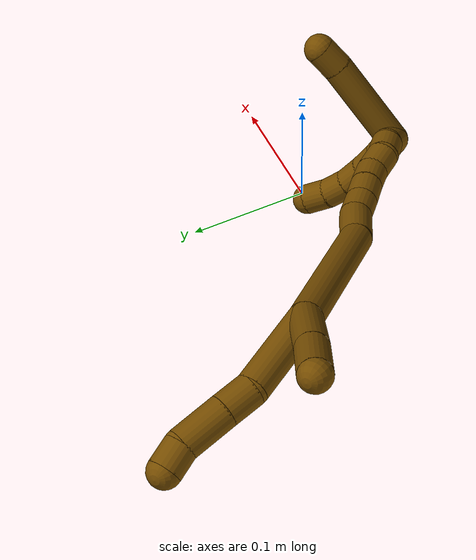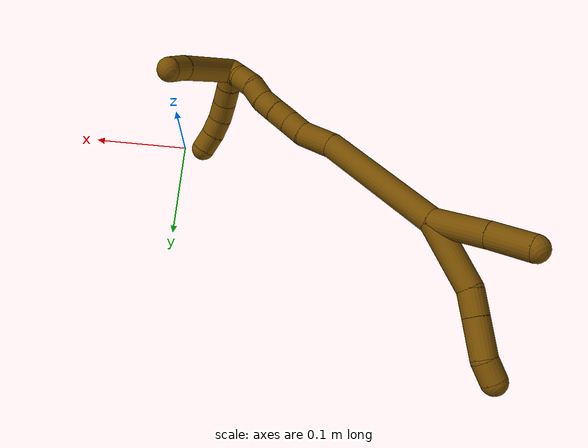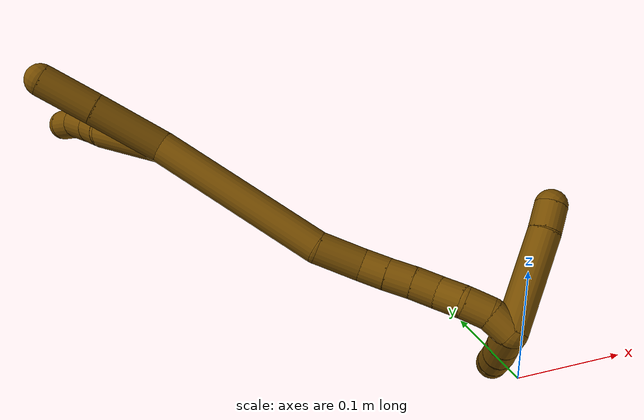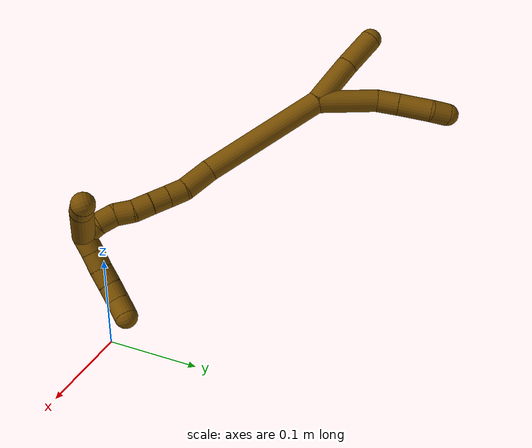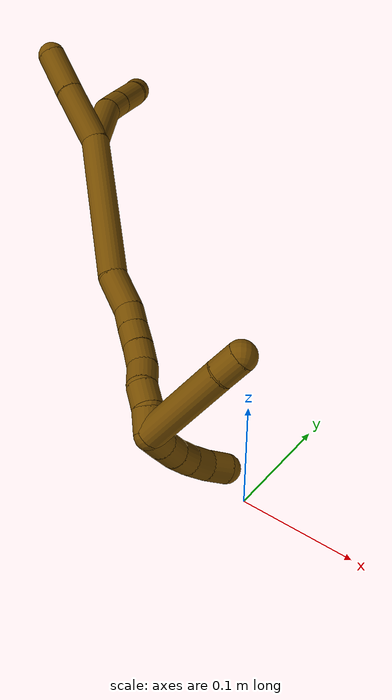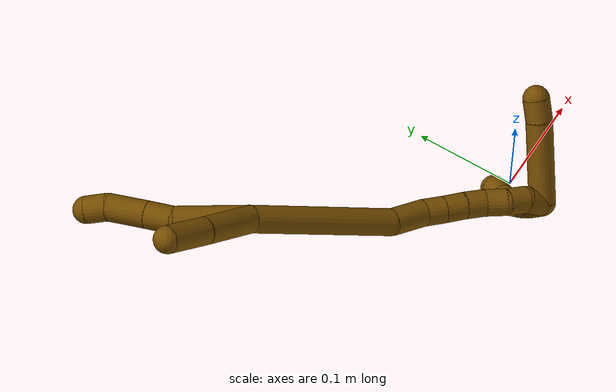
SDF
<sdf version="1.7">
 <world name="default">
  <model name="12">
   <static>0</static>
   <link name="12">
    <collision name="collision-cylinder-e_1_2_8">
     <pose>0.012698 -0.000314 0.03168 0.009906 0.3812 0.001911</pose>
     <geometry><cylinder><radius>0.0125</radius><length>0.068264</length></cylinder></geometry>
     <surface>
      <friction><ode><mu>1.16</mu><mu2>1.16</mu2><slip1>0</slip1><slip2>0</slip2></ode></friction>
      <contact><ode><kp>1e+06</kp><kd>1</kd><max_vel>0</max_vel><min_depth>0.001</min_depth></ode></contact>
     </surface>
    </collision>
    <visual name="visual-cylinder-e_1_2_8">
     <pose>0.012698 -0.000314 0.03168 0.009906 0.3812 0.001911</pose>
     <geometry><cylinder><radius>0.0125</radius><length>0.068264</length></cylinder></geometry>
     <material><ambient>0.466667 0.301961 0 1</ambient></material>
    </visual>
    <collision name="collision-cylinder-e_2_8_9">
     <pose>0.03077 -0.004289 0.073743 0.339028 0.45407 0.079039</pose>
     <geometry><cylinder><radius>0.0125</radius><length>0.024501</length></cylinder></geometry>
     <surface>
      <friction><ode><mu>1.16</mu><mu2>1.16</mu2><slip1>0</slip1><slip2>0</slip2></ode></friction>
      <contact><ode><kp>1e+06</kp><kd>1</kd><max_vel>0</max_vel><min_depth>0.001</min_depth></ode></contact>
     </surface>
    </collision>
    <visual name="visual-cylinder-e_2_8_9">
     <pose>0.03077 -0.004289 0.073743 0.339028 0.45407 0.079039</pose>
     <geometry><cylinder><radius>0.0125</radius><length>0.024501</length></cylinder></geometry>
     <material><ambient>0.466667 0.301961 0 1</ambient></material>
    </visual>
    <collision name="collision-cylinder-e_3_9_10">
     <pose>0.044614 -0.013389 0.09958 0.33838 0.477168 0.083046</pose>
     <geometry><cylinder><radius>0.0125</radius><length>0.036888</length></cylinder></geometry>
     <surface>
      <friction><ode><mu>1.16</mu><mu2>1.16</mu2><slip1>0</slip1><slip2>0</slip2></ode></friction>
      <contact><ode><kp>1e+06</kp><kd>1</kd><max_vel>0</max_vel><min_depth>0.001</min_depth></ode></contact>
     </surface>
    </collision>
    <visual name="visual-cylinder-e_3_9_10">
     <pose>0.044614 -0.013389 0.09958 0.33838 0.477168 0.083046</pose>
     <geometry><cylinder><radius>0.0125</radius><length>0.036888</length></cylinder></geometry>
     <material><ambient>0.466667 0.301961 0 1</ambient></material>
    </visual>
    <collision name="collision-cylinder-e_4_10_6">
     <pose>0.059094 -0.019074 0.12324 0.029962 0.631896 0.009795</pose>
     <geometry><cylinder><radius>0.0125</radius><length>0.020347</length></cylinder></geometry>
     <surface>
      <friction><ode><mu>1.16</mu><mu2>1.16</mu2><slip1>0</slip1><slip2>0</slip2></ode></friction>
      <contact><ode><kp>1e+06</kp><kd>1</kd><max_vel>0</max_vel><min_depth>0.001</min_depth></ode></contact>
     </surface>
    </collision>
    <visual name="visual-cylinder-e_4_10_6">
     <pose>0.059094 -0.019074 0.12324 0.029962 0.631896 0.009795</pose>
     <geometry><cylinder><radius>0.0125</radius><length>0.020347</length></cylinder></geometry>
     <material><ambient>0.466667 0.301961 0 1</ambient></material>
    </visual>
    <collision name="collision-cylinder-e_1_2_11">
     <pose>-0.0077 0.014002 0.023568 -0.536092 -0.273843 0.07565</pose>
     <geometry><cylinder><radius>0.0125</radius><length>0.056949</length></cylinder></geometry>
     <surface>
      <friction><ode><mu>1.16</mu><mu2>1.16</mu2><slip1>0</slip1><slip2>0</slip2></ode></friction>
      <contact><ode><kp>1e+06</kp><kd>1</kd><max_vel>0</max_vel><min_depth>0.001</min_depth></ode></contact>
     </surface>
    </collision>
    <visual name="visual-cylinder-e_1_2_11">
     <pose>-0.0077 0.014002 0.023568 -0.536092 -0.273843 0.07565</pose>
     <geometry><cylinder><radius>0.0125</radius><length>0.056949</length></cylinder></geometry>
     <material><ambient>0.466667 0.301961 0 1</ambient></material>
    </visual>
    <collision name="collision-cylinder-e_2_11_5">
     <pose>-0.020575 0.038132 0.065411 -0.506029 -0.24274 0.063051</pose>
     <geometry><cylinder><radius>0.0125</radius><length>0.043051</length></cylinder></geometry>
     <surface>
      <friction><ode><mu>1.16</mu><mu2>1.16</mu2><slip1>0</slip1><slip2>0</slip2></ode></friction>
      <contact><ode><kp>1e+06</kp><kd>1</kd><max_vel>0</max_vel><min_depth>0.001</min_depth></ode></contact>
     </surface>
    </collision>
    <visual name="visual-cylinder-e_2_11_5">
     <pose>-0.020575 0.038132 0.065411 -0.506029 -0.24274 0.063051</pose>
     <geometry><cylinder><radius>0.0125</radius><length>0.043051</length></cylinder></geometry>
     <material><ambient>0.466667 0.301961 0 1</ambient></material>
    </visual>
    <collision name="collision-cylinder-e_1_2_12">
     <pose>0.007893 -0.014887 -0.06933 2.93008 0.110858 0.963272</pose>
     <geometry><cylinder><radius>0.0125</radius><length>0.142697</length></cylinder></geometry>
     <surface>
      <friction><ode><mu>1.16</mu><mu2>1.16</mu2><slip1>0</slip1><slip2>0</slip2></ode></friction>
      <contact><ode><kp>1e+06</kp><kd>1</kd><max_vel>0</max_vel><min_depth>0.001</min_depth></ode></contact>
     </surface>
    </collision>
    <visual name="visual-cylinder-e_1_2_12">
     <pose>0.007893 -0.014887 -0.06933 2.93008 0.110858 0.963272</pose>
     <geometry><cylinder><radius>0.0125</radius><length>0.142697</length></cylinder></geometry>
     <material><ambient>0.466667 0.301961 0 1</ambient></material>
    </visual>
    <collision name="collision-cylinder-e_2_12_13">
     <pose>0.017064 -0.038092 -0.15453 2.6588 0.071149 0.287125</pose>
     <geometry><cylinder><radius>0.0125</radius><length>0.035926</length></cylinder></geometry>
     <surface>
      <friction><ode><mu>1.16</mu><mu2>1.16</mu2><slip1>0</slip1><slip2>0</slip2></ode></friction>
      <contact><ode><kp>1e+06</kp><kd>1</kd><max_vel>0</max_vel><min_depth>0.001</min_depth></ode></contact>
     </surface>
    </collision>
    <visual name="visual-cylinder-e_2_12_13">
     <pose>0.017064 -0.038092 -0.15453 2.6588 0.071149 0.287125</pose>
     <geometry><cylinder><radius>0.0125</radius><length>0.035926</length></cylinder></geometry>
     <material><ambient>0.466667 0.301961 0 1</ambient></material>
    </visual>
    <collision name="collision-cylinder-e_3_13_14">
     <pose>0.017241 -0.049233 -0.179983 2.8552 -0.109631 -0.727262</pose>
     <geometry><cylinder><radius>0.0125</radius><length>0.020103</length></cylinder></geometry>
     <surface>
      <friction><ode><mu>1.16</mu><mu2>1.16</mu2><slip1>0</slip1><slip2>0</slip2></ode></friction>
      <contact><ode><kp>1e+06</kp><kd>1</kd><max_vel>0</max_vel><min_depth>0.001</min_depth></ode></contact>
     </surface>
    </collision>
    <visual name="visual-cylinder-e_3_13_14">
     <pose>0.017241 -0.049233 -0.179983 2.8552 -0.109631 -0.727262</pose>
     <geometry><cylinder><radius>0.0125</radius><length>0.020103</length></cylinder></geometry>
     <material><ambient>0.466667 0.301961 0 1</ambient></material>
    </visual>
    <collision name="collision-cylinder-e_4_14_15">
     <pose>0.014772 -0.055154 -0.199161 2.82923 -0.135032 -0.811229</pose>
     <geometry><cylinder><radius>0.0125</radius><length>0.020347</length></cylinder></geometry>
     <surface>
      <friction><ode><mu>1.16</mu><mu2>1.16</mu2><slip1>0</slip1><slip2>0</slip2></ode></friction>
      <contact><ode><kp>1e+06</kp><kd>1</kd><max_vel>0</max_vel><min_depth>0.001</min_depth></ode></contact>
     </surface>
    </collision>
    <visual name="visual-cylinder-e_4_14_15">
     <pose>0.014772 -0.055154 -0.199161 2.82923 -0.135032 -0.811229</pose>
     <geometry><cylinder><radius>0.0125</radius><length>0.020347</length></cylinder></geometry>
     <material><ambient>0.466667 0.301961 0 1</ambient></material>
    </visual>
    <collision name="collision-cylinder-e_5_15_16">
     <pose>0.012413 -0.060947 -0.218388 2.8688 -0.098495 -0.689534</pose>
     <geometry><cylinder><radius>0.0125</radius><length>0.020107</length></cylinder></geometry>
     <surface>
      <friction><ode><mu>1.16</mu><mu2>1.16</mu2><slip1>0</slip1><slip2>0</slip2></ode></friction>
      <contact><ode><kp>1e+06</kp><kd>1</kd><max_vel>0</max_vel><min_depth>0.001</min_depth></ode></contact>
     </surface>
    </collision>
    <visual name="visual-cylinder-e_5_15_16">
     <pose>0.012413 -0.060947 -0.218388 2.8688 -0.098495 -0.689534</pose>
     <geometry><cylinder><radius>0.0125</radius><length>0.020107</length></cylinder></geometry>
     <material><ambient>0.466667 0.301961 0 1</ambient></material>
    </visual>
    <collision name="collision-cylinder-e_6_16_17">
     <pose>0.00886 -0.064519 -0.237954 3.05359 -0.251849 -2.47214</pose>
     <geometry><cylinder><radius>0.0125</radius><length>0.020588</length></cylinder></geometry>
     <surface>
      <friction><ode><mu>1.16</mu><mu2>1.16</mu2><slip1>0</slip1><slip2>0</slip2></ode></friction>
      <contact><ode><kp>1e+06</kp><kd>1</kd><max_vel>0</max_vel><min_depth>0.001</min_depth></ode></contact>
     </surface>
    </collision>
    <visual name="visual-cylinder-e_6_16_17">
     <pose>0.00886 -0.064519 -0.237954 3.05359 -0.251849 -2.47214</pose>
     <geometry><cylinder><radius>0.0125</radius><length>0.020588</length></cylinder></geometry>
     <material><ambient>0.466667 0.301961 0 1</ambient></material>
    </visual>
    <collision name="collision-cylinder-e_7_17_18">
     <pose>0.006237 -0.068487 -0.257493 2.83022 -0.005724 -0.036466</pose>
     <geometry><cylinder><radius>0.0125</radius><length>0.020187</length></cylinder></geometry>
     <surface>
      <friction><ode><mu>1.16</mu><mu2>1.16</mu2><slip1>0</slip1><slip2>0</slip2></ode></friction>
      <contact><ode><kp>1e+06</kp><kd>1</kd><max_vel>0</max_vel><min_depth>0.001</min_depth></ode></contact>
     </surface>
    </collision>
    <visual name="visual-cylinder-e_7_17_18">
     <pose>0.006237 -0.068487 -0.257493 2.83022 -0.005724 -0.036466</pose>
     <geometry><cylinder><radius>0.0125</radius><length>0.020187</length></cylinder></geometry>
     <material><ambient>0.466667 0.301961 0 1</ambient></material>
    </visual>
    <collision name="collision-cylinder-e_8_18_1">
     <pose>0.008929 -0.073 -0.276633 2.99362 0.277985 2.16715</pose>
     <geometry><cylinder><radius>0.0125</radius><length>0.020045</length></cylinder></geometry>
     <surface>
      <friction><ode><mu>1.16</mu><mu2>1.16</mu2><slip1>0</slip1><slip2>0</slip2></ode></friction>
      <contact><ode><kp>1e+06</kp><kd>1</kd><max_vel>0</max_vel><min_depth>0.001</min_depth></ode></contact>
     </surface>
    </collision>
    <visual name="visual-cylinder-e_8_18_1">
     <pose>0.008929 -0.073 -0.276633 2.99362 0.277985 2.16715</pose>
     <geometry><cylinder><radius>0.0125</radius><length>0.020045</length></cylinder></geometry>
     <material><ambient>0.466667 0.301961 0 1</ambient></material>
    </visual>
    <collision name="collision-cylinder-e_1_1_19">
     <pose>-0.014997 -0.100765 -0.274353 1.14926 -0.745909 -0.496261</pose>
     <geometry><cylinder><radius>0.0125</radius><length>0.078618</length></cylinder></geometry>
     <surface>
      <friction><ode><mu>1.16</mu><mu2>1.16</mu2><slip1>0</slip1><slip2>0</slip2></ode></friction>
      <contact><ode><kp>1e+06</kp><kd>1</kd><max_vel>0</max_vel><min_depth>0.001</min_depth></ode></contact>
     </surface>
    </collision>
    <visual name="visual-cylinder-e_1_1_19">
     <pose>-0.014997 -0.100765 -0.274353 1.14926 -0.745909 -0.496261</pose>
     <geometry><cylinder><radius>0.0125</radius><length>0.078618</length></cylinder></geometry>
     <material><ambient>0.466667 0.301961 0 1</ambient></material>
    </visual>
    <collision name="collision-cylinder-e_2_19_4">
     <pose>-0.048085 -0.134696 -0.258587 1.09056 -0.643152 -0.398813</pose>
     <geometry><cylinder><radius>0.0125</radius><length>0.021382</length></cylinder></geometry>
     <surface>
      <friction><ode><mu>1.16</mu><mu2>1.16</mu2><slip1>0</slip1><slip2>0</slip2></ode></friction>
      <contact><ode><kp>1e+06</kp><kd>1</kd><max_vel>0</max_vel><min_depth>0.001</min_depth></ode></contact>
     </surface>
    </collision>
    <visual name="visual-cylinder-e_2_19_4">
     <pose>-0.048085 -0.134696 -0.258587 1.09056 -0.643152 -0.398813</pose>
     <geometry><cylinder><radius>0.0125</radius><length>0.021382</length></cylinder></geometry>
     <material><ambient>0.466667 0.301961 0 1</ambient></material>
    </visual>
    <collision name="collision-cylinder-e_1_1_20">
     <pose>0.020903 -0.078137 -0.285109 1.29351 1.17419 0.931144</pose>
     <geometry><cylinder><radius>0.0125</radius><length>0.02</length></cylinder></geometry>
     <surface>
      <friction><ode><mu>1.16</mu><mu2>1.16</mu2><slip1>0</slip1><slip2>0</slip2></ode></friction>
      <contact><ode><kp>1e+06</kp><kd>1</kd><max_vel>0</max_vel><min_depth>0.001</min_depth></ode></contact>
     </surface>
    </collision>
    <visual name="visual-cylinder-e_1_1_20">
     <pose>0.020903 -0.078137 -0.285109 1.29351 1.17419 0.931144</pose>
     <geometry><cylinder><radius>0.0125</radius><length>0.02</length></cylinder></geometry>
     <material><ambient>0.466667 0.301961 0 1</ambient></material>
    </visual>
    <collision name="collision-cylinder-e_2_20_21">
     <pose>0.03906 -0.086294 -0.283359 1.41633 1.10452 0.97111</pose>
     <geometry><cylinder><radius>0.0125</radius><length>0.02</length></cylinder></geometry>
     <surface>
      <friction><ode><mu>1.16</mu><mu2>1.16</mu2><slip1>0</slip1><slip2>0</slip2></ode></friction>
      <contact><ode><kp>1e+06</kp><kd>1</kd><max_vel>0</max_vel><min_depth>0.001</min_depth></ode></contact>
     </surface>
    </collision>
    <visual name="visual-cylinder-e_2_20_21">
     <pose>0.03906 -0.086294 -0.283359 1.41633 1.10452 0.97111</pose>
     <geometry><cylinder><radius>0.0125</radius><length>0.02</length></cylinder></geometry>
     <material><ambient>0.466667 0.301961 0 1</ambient></material>
    </visual>
    <collision name="collision-cylinder-e_3_21_22">
     <pose>0.056458 -0.09585 -0.281191 1.28962 1.00951 0.7876</pose>
     <geometry><cylinder><radius>0.0125</radius><length>0.02</length></cylinder></geometry>
     <surface>
      <friction><ode><mu>1.16</mu><mu2>1.16</mu2><slip1>0</slip1><slip2>0</slip2></ode></friction>
      <contact><ode><kp>1e+06</kp><kd>1</kd><max_vel>0</max_vel><min_depth>0.001</min_depth></ode></contact>
     </surface>
    </collision>
    <visual name="visual-cylinder-e_3_21_22">
     <pose>0.056458 -0.09585 -0.281191 1.28962 1.00951 0.7876</pose>
     <geometry><cylinder><radius>0.0125</radius><length>0.02</length></cylinder></geometry>
     <material><ambient>0.466667 0.301961 0 1</ambient></material>
    </visual>
    <collision name="collision-cylinder-e_4_22_23">
     <pose>0.072303 -0.107533 -0.278169 1.33987 0.830005 0.671593</pose>
     <geometry><cylinder><radius>0.0125</radius><length>0.02</length></cylinder></geometry>
     <surface>
      <friction><ode><mu>1.16</mu><mu2>1.16</mu2><slip1>0</slip1><slip2>0</slip2></ode></friction>
      <contact><ode><kp>1e+06</kp><kd>1</kd><max_vel>0</max_vel><min_depth>0.001</min_depth></ode></contact>
     </surface>
    </collision>
    <visual name="visual-cylinder-e_4_22_23">
     <pose>0.072303 -0.107533 -0.278169 1.33987 0.830005 0.671593</pose>
     <geometry><cylinder><radius>0.0125</radius><length>0.02</length></cylinder></geometry>
     <material><ambient>0.466667 0.301961 0 1</ambient></material>
    </visual>
    <collision name="collision-cylinder-e_5_23_3">
     <pose>0.085681 -0.121909 -0.27487 1.34969 0.643339 0.521178</pose>
     <geometry><cylinder><radius>0.0125</radius><length>0.02</length></cylinder></geometry>
     <surface>
      <friction><ode><mu>1.16</mu><mu2>1.16</mu2><slip1>0</slip1><slip2>0</slip2></ode></friction>
      <contact><ode><kp>1e+06</kp><kd>1</kd><max_vel>0</max_vel><min_depth>0.001</min_depth></ode></contact>
     </surface>
    </collision>
    <visual name="visual-cylinder-e_5_23_3">
     <pose>0.085681 -0.121909 -0.27487 1.34969 0.643339 0.521178</pose>
     <geometry><cylinder><radius>0.0125</radius><length>0.02</length></cylinder></geometry>
     <material><ambient>0.466667 0.301961 0 1</ambient></material>
    </visual>
    <collision name="collision-sphere-3">
     <pose>0.09168 -0.129715 -0.273115 0 -0 0</pose>
     <geometry><sphere><radius>0.0125</radius></sphere></geometry>
     <surface>
      <friction><ode><mu>1.16</mu><mu2>1.16</mu2><slip1>0</slip1><slip2>0</slip2></ode></friction>
      <contact><ode><kp>1e+06</kp><kd>1</kd><max_vel>0</max_vel><min_depth>0.001</min_depth></ode></contact>
     </surface>
    </collision>
    <visual name="visual-sphere-3">
     <pose>0.09168 -0.129715 -0.273115 0 -0 0</pose>
     <geometry><sphere><radius>0.0125</radius></sphere></geometry>
     <material><ambient>0.466667 0.301961 0 1</ambient></material>
    </visual>
    <collision name="collision-sphere-23">
     <pose>0.079682 -0.114103 -0.276625 0 -0 0</pose>
     <geometry><sphere><radius>0.0125</radius></sphere></geometry>
     <surface>
      <friction><ode><mu>1.16</mu><mu2>1.16</mu2><slip1>0</slip1><slip2>0</slip2></ode></friction>
      <contact><ode><kp>1e+06</kp><kd>1</kd><max_vel>0</max_vel><min_depth>0.001</min_depth></ode></contact>
     </surface>
    </collision>
    <visual name="visual-sphere-23">
     <pose>0.079682 -0.114103 -0.276625 0 -0 0</pose>
     <geometry><sphere><radius>0.0125</radius></sphere></geometry>
     <material><ambient>0.466667 0.301961 0 1</ambient></material>
    </visual>
    <collision name="collision-sphere-22">
     <pose>0.064924 -0.100964 -0.279714 0 -0 0</pose>
     <geometry><sphere><radius>0.0125</radius></sphere></geometry>
     <surface>
      <friction><ode><mu>1.16</mu><mu2>1.16</mu2><slip1>0</slip1><slip2>0</slip2></ode></friction>
      <contact><ode><kp>1e+06</kp><kd>1</kd><max_vel>0</max_vel><min_depth>0.001</min_depth></ode></contact>
     </surface>
    </collision>
    <visual name="visual-sphere-22">
     <pose>0.064924 -0.100964 -0.279714 0 -0 0</pose>
     <geometry><sphere><radius>0.0125</radius></sphere></geometry>
     <material><ambient>0.466667 0.301961 0 1</ambient></material>
    </visual>
    <collision name="collision-sphere-21">
     <pose>0.047992 -0.090736 -0.282668 0 -0 0</pose>
     <geometry><sphere><radius>0.0125</radius></sphere></geometry>
     <surface>
      <friction><ode><mu>1.16</mu><mu2>1.16</mu2><slip1>0</slip1><slip2>0</slip2></ode></friction>
      <contact><ode><kp>1e+06</kp><kd>1</kd><max_vel>0</max_vel><min_depth>0.001</min_depth></ode></contact>
     </surface>
    </collision>
    <visual name="visual-sphere-21">
     <pose>0.047992 -0.090736 -0.282668 0 -0 0</pose>
     <geometry><sphere><radius>0.0125</radius></sphere></geometry>
     <material><ambient>0.466667 0.301961 0 1</ambient></material>
    </visual>
    <collision name="collision-sphere-20">
     <pose>0.030127 -0.081852 -0.284051 0 -0 0</pose>
     <geometry><sphere><radius>0.0125</radius></sphere></geometry>
     <surface>
      <friction><ode><mu>1.16</mu><mu2>1.16</mu2><slip1>0</slip1><slip2>0</slip2></ode></friction>
      <contact><ode><kp>1e+06</kp><kd>1</kd><max_vel>0</max_vel><min_depth>0.001</min_depth></ode></contact>
     </surface>
    </collision>
    <visual name="visual-sphere-20">
     <pose>0.030127 -0.081852 -0.284051 0 -0 0</pose>
     <geometry><sphere><radius>0.0125</radius></sphere></geometry>
     <material><ambient>0.466667 0.301961 0 1</ambient></material>
    </visual>
    <collision name="collision-sphere-4">
     <pose>-0.054497 -0.142284 -0.254635 0 -0 0</pose>
     <geometry><sphere><radius>0.0125</radius></sphere></geometry>
     <surface>
      <friction><ode><mu>1.16</mu><mu2>1.16</mu2><slip1>0</slip1><slip2>0</slip2></ode></friction>
      <contact><ode><kp>1e+06</kp><kd>1</kd><max_vel>0</max_vel><min_depth>0.001</min_depth></ode></contact>
     </surface>
    </collision>
    <visual name="visual-sphere-4">
     <pose>-0.054497 -0.142284 -0.254635 0 -0 0</pose>
     <geometry><sphere><radius>0.0125</radius></sphere></geometry>
     <material><ambient>0.466667 0.301961 0 1</ambient></material>
    </visual>
    <collision name="collision-sphere-11">
     <pose>-0.015401 0.028005 0.047135 0 -0 0</pose>
     <geometry><sphere><radius>0.0125</radius></sphere></geometry>
     <surface>
      <friction><ode><mu>1.16</mu><mu2>1.16</mu2><slip1>0</slip1><slip2>0</slip2></ode></friction>
      <contact><ode><kp>1e+06</kp><kd>1</kd><max_vel>0</max_vel><min_depth>0.001</min_depth></ode></contact>
     </surface>
    </collision>
    <visual name="visual-sphere-11">
     <pose>-0.015401 0.028005 0.047135 0 -0 0</pose>
     <geometry><sphere><radius>0.0125</radius></sphere></geometry>
     <material><ambient>0.466667 0.301961 0 1</ambient></material>
    </visual>
    <collision name="collision-sphere-6">
     <pose>0.065103 -0.01932 0.131446 0 -0 0</pose>
     <geometry><sphere><radius>0.0125</radius></sphere></geometry>
     <surface>
      <friction><ode><mu>1.16</mu><mu2>1.16</mu2><slip1>0</slip1><slip2>0</slip2></ode></friction>
      <contact><ode><kp>1e+06</kp><kd>1</kd><max_vel>0</max_vel><min_depth>0.001</min_depth></ode></contact>
     </surface>
    </collision>
    <visual name="visual-sphere-6">
     <pose>0.065103 -0.01932 0.131446 0 -0 0</pose>
     <geometry><sphere><radius>0.0125</radius></sphere></geometry>
     <material><ambient>0.466667 0.301961 0 1</ambient></material>
    </visual>
    <collision name="collision-sphere-10">
     <pose>0.053085 -0.018828 0.115035 0 -0 0</pose>
     <geometry><sphere><radius>0.0125</radius></sphere></geometry>
     <surface>
      <friction><ode><mu>1.16</mu><mu2>1.16</mu2><slip1>0</slip1><slip2>0</slip2></ode></friction>
      <contact><ode><kp>1e+06</kp><kd>1</kd><max_vel>0</max_vel><min_depth>0.001</min_depth></ode></contact>
     </surface>
    </collision>
    <visual name="visual-sphere-10">
     <pose>0.053085 -0.018828 0.115035 0 -0 0</pose>
     <geometry><sphere><radius>0.0125</radius></sphere></geometry>
     <material><ambient>0.466667 0.301961 0 1</ambient></material>
    </visual>
    <collision name="collision-sphere-9">
     <pose>0.036143 -0.00795 0.084125 0 -0 0</pose>
     <geometry><sphere><radius>0.0125</radius></sphere></geometry>
     <surface>
      <friction><ode><mu>1.16</mu><mu2>1.16</mu2><slip1>0</slip1><slip2>0</slip2></ode></friction>
      <contact><ode><kp>1e+06</kp><kd>1</kd><max_vel>0</max_vel><min_depth>0.001</min_depth></ode></contact>
     </surface>
    </collision>
    <visual name="visual-sphere-9">
     <pose>0.036143 -0.00795 0.084125 0 -0 0</pose>
     <geometry><sphere><radius>0.0125</radius></sphere></geometry>
     <material><ambient>0.466667 0.301961 0 1</ambient></material>
    </visual>
    <collision name="collision-sphere-2">
     <geometry><sphere><radius>0.0125</radius></sphere></geometry>
     <surface>
      <friction><ode><mu>1.16</mu><mu2>1.16</mu2><slip1>0</slip1><slip2>0</slip2></ode></friction>
      <contact><ode><kp>1e+06</kp><kd>1</kd><max_vel>0</max_vel><min_depth>0.001</min_depth></ode></contact>
     </surface>
    </collision>
    <visual name="visual-sphere-2">
     <geometry><sphere><radius>0.0125</radius></sphere></geometry>
     <material><ambient>0.466667 0.301961 0 1</ambient></material>
    </visual>
    <collision name="collision-sphere-19">
     <pose>-0.041674 -0.127109 -0.26254 0 -0 0</pose>
     <geometry><sphere><radius>0.0125</radius></sphere></geometry>
     <surface>
      <friction><ode><mu>1.16</mu><mu2>1.16</mu2><slip1>0</slip1><slip2>0</slip2></ode></friction>
      <contact><ode><kp>1e+06</kp><kd>1</kd><max_vel>0</max_vel><min_depth>0.001</min_depth></ode></contact>
     </surface>
    </collision>
    <visual name="visual-sphere-19">
     <pose>-0.041674 -0.127109 -0.26254 0 -0 0</pose>
     <geometry><sphere><radius>0.0125</radius></sphere></geometry>
     <material><ambient>0.466667 0.301961 0 1</ambient></material>
    </visual>
    <collision name="collision-sphere-8">
     <pose>0.025396 -0.000628 0.063361 0 -0 0</pose>
     <geometry><sphere><radius>0.0125</radius></sphere></geometry>
     <surface>
      <friction><ode><mu>1.16</mu><mu2>1.16</mu2><slip1>0</slip1><slip2>0</slip2></ode></friction>
      <contact><ode><kp>1e+06</kp><kd>1</kd><max_vel>0</max_vel><min_depth>0.001</min_depth></ode></contact>
     </surface>
    </collision>
    <visual name="visual-sphere-8">
     <pose>0.025396 -0.000628 0.063361 0 -0 0</pose>
     <geometry><sphere><radius>0.0125</radius></sphere></geometry>
     <material><ambient>0.466667 0.301961 0 1</ambient></material>
    </visual>
    <collision name="collision-sphere-5">
     <pose>-0.025749 0.04826 0.083687 0 -0 0</pose>
     <geometry><sphere><radius>0.0125</radius></sphere></geometry>
     <surface>
      <friction><ode><mu>1.16</mu><mu2>1.16</mu2><slip1>0</slip1><slip2>0</slip2></ode></friction>
      <contact><ode><kp>1e+06</kp><kd>1</kd><max_vel>0</max_vel><min_depth>0.001</min_depth></ode></contact>
     </surface>
    </collision>
    <visual name="visual-sphere-5">
     <pose>-0.025749 0.04826 0.083687 0 -0 0</pose>
     <geometry><sphere><radius>0.0125</radius></sphere></geometry>
     <material><ambient>0.466667 0.301961 0 1</ambient></material>
    </visual>
    <collision name="collision-sphere-12">
     <pose>0.015787 -0.029774 -0.13866 0 -0 0</pose>
     <geometry><sphere><radius>0.0125</radius></sphere></geometry>
     <surface>
      <friction><ode><mu>1.16</mu><mu2>1.16</mu2><slip1>0</slip1><slip2>0</slip2></ode></friction>
      <contact><ode><kp>1e+06</kp><kd>1</kd><max_vel>0</max_vel><min_depth>0.001</min_depth></ode></contact>
     </surface>
    </collision>
    <visual name="visual-sphere-12">
     <pose>0.015787 -0.029774 -0.13866 0 -0 0</pose>
     <geometry><sphere><radius>0.0125</radius></sphere></geometry>
     <material><ambient>0.466667 0.301961 0 1</ambient></material>
    </visual>
    <collision name="collision-sphere-13">
     <pose>0.018341 -0.046411 -0.170399 0 -0 0</pose>
     <geometry><sphere><radius>0.0125</radius></sphere></geometry>
     <surface>
      <friction><ode><mu>1.16</mu><mu2>1.16</mu2><slip1>0</slip1><slip2>0</slip2></ode></friction>
      <contact><ode><kp>1e+06</kp><kd>1</kd><max_vel>0</max_vel><min_depth>0.001</min_depth></ode></contact>
     </surface>
    </collision>
    <visual name="visual-sphere-13">
     <pose>0.018341 -0.046411 -0.170399 0 -0 0</pose>
     <geometry><sphere><radius>0.0125</radius></sphere></geometry>
     <material><ambient>0.466667 0.301961 0 1</ambient></material>
    </visual>
    <collision name="collision-sphere-14">
     <pose>0.016141 -0.052056 -0.189568 0 -0 0</pose>
     <geometry><sphere><radius>0.0125</radius></sphere></geometry>
     <surface>
      <friction><ode><mu>1.16</mu><mu2>1.16</mu2><slip1>0</slip1><slip2>0</slip2></ode></friction>
      <contact><ode><kp>1e+06</kp><kd>1</kd><max_vel>0</max_vel><min_depth>0.001</min_depth></ode></contact>
     </surface>
    </collision>
    <visual name="visual-sphere-14">
     <pose>0.016141 -0.052056 -0.189568 0 -0 0</pose>
     <geometry><sphere><radius>0.0125</radius></sphere></geometry>
     <material><ambient>0.466667 0.301961 0 1</ambient></material>
    </visual>
    <collision name="collision-sphere-15">
     <pose>0.013402 -0.058251 -0.208754 0 -0 0</pose>
     <geometry><sphere><radius>0.0125</radius></sphere></geometry>
     <surface>
      <friction><ode><mu>1.16</mu><mu2>1.16</mu2><slip1>0</slip1><slip2>0</slip2></ode></friction>
      <contact><ode><kp>1e+06</kp><kd>1</kd><max_vel>0</max_vel><min_depth>0.001</min_depth></ode></contact>
     </surface>
    </collision>
    <visual name="visual-sphere-15">
     <pose>0.013402 -0.058251 -0.208754 0 -0 0</pose>
     <geometry><sphere><radius>0.0125</radius></sphere></geometry>
     <material><ambient>0.466667 0.301961 0 1</ambient></material>
    </visual>
    <collision name="collision-sphere-16">
     <pose>0.011425 -0.063642 -0.228023 0 -0 0</pose>
     <geometry><sphere><radius>0.0125</radius></sphere></geometry>
     <surface>
      <friction><ode><mu>1.16</mu><mu2>1.16</mu2><slip1>0</slip1><slip2>0</slip2></ode></friction>
      <contact><ode><kp>1e+06</kp><kd>1</kd><max_vel>0</max_vel><min_depth>0.001</min_depth></ode></contact>
     </surface>
    </collision>
    <visual name="visual-sphere-16">
     <pose>0.011425 -0.063642 -0.228023 0 -0 0</pose>
     <geometry><sphere><radius>0.0125</radius></sphere></geometry>
     <material><ambient>0.466667 0.301961 0 1</ambient></material>
    </visual>
    <collision name="collision-sphere-17">
     <pose>0.006294 -0.065395 -0.247884 0 -0 0</pose>
     <geometry><sphere><radius>0.0125</radius></sphere></geometry>
     <surface>
      <friction><ode><mu>1.16</mu><mu2>1.16</mu2><slip1>0</slip1><slip2>0</slip2></ode></friction>
      <contact><ode><kp>1e+06</kp><kd>1</kd><max_vel>0</max_vel><min_depth>0.001</min_depth></ode></contact>
     </surface>
    </collision>
    <visual name="visual-sphere-17">
     <pose>0.006294 -0.065395 -0.247884 0 -0 0</pose>
     <geometry><sphere><radius>0.0125</radius></sphere></geometry>
     <material><ambient>0.466667 0.301961 0 1</ambient></material>
    </visual>
    <collision name="collision-sphere-18">
     <pose>0.006179 -0.071579 -0.267101 0 -0 0</pose>
     <geometry><sphere><radius>0.0125</radius></sphere></geometry>
     <surface>
      <friction><ode><mu>1.16</mu><mu2>1.16</mu2><slip1>0</slip1><slip2>0</slip2></ode></friction>
      <contact><ode><kp>1e+06</kp><kd>1</kd><max_vel>0</max_vel><min_depth>0.001</min_depth></ode></contact>
     </surface>
    </collision>
    <visual name="visual-sphere-18">
     <pose>0.006179 -0.071579 -0.267101 0 -0 0</pose>
     <geometry><sphere><radius>0.0125</radius></sphere></geometry>
     <material><ambient>0.466667 0.301961 0 1</ambient></material>
    </visual>
    <collision name="collision-sphere-1">
     <pose>0.01168 -0.074421 -0.286166 0 -0 0</pose>
     <geometry><sphere><radius>0.0125</radius></sphere></geometry>
     <surface>
      <friction><ode><mu>1.16</mu><mu2>1.16</mu2><slip1>0</slip1><slip2>0</slip2></ode></friction>
      <contact><ode><kp>1e+06</kp><kd>1</kd><max_vel>0</max_vel><min_depth>0.001</min_depth></ode></contact>
     </surface>
    </collision>
    <visual name="visual-sphere-1">
     <pose>0.01168 -0.074421 -0.286166 0 -0 0</pose>
     <geometry><sphere><radius>0.0125</radius></sphere></geometry>
     <material><ambient>0.466667 0.301961 0 1</ambient></material>
    </visual>
    <inertial>
     <pose>0.012732 -0.040227 -0.11199 0 -0 0</pose>
     <mass>0.75</mass>
     <inertia>
      <ixx>0.000436</ixx>
      <ixy>0</ixy>
      <ixz>0</ixz>
      <iyy>0.000132</iyy>
      <iyz>0</iyz>
      <izz>6.7e-05</izz>
     </inertia>
    </inertial>
   </link>
   <pose>-0.256532 0.124026 0.195325 -0.063169 1.22205 2.07903</pose>
  </model>
 </world>
</sdf>
